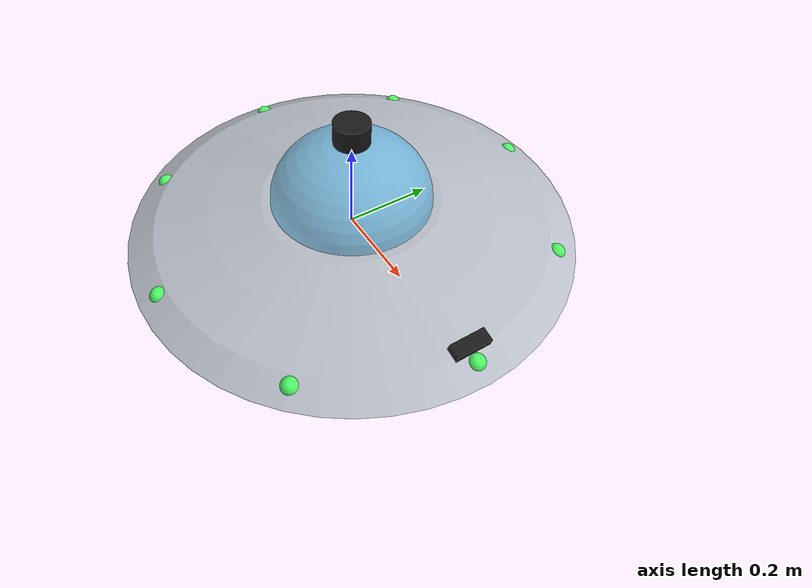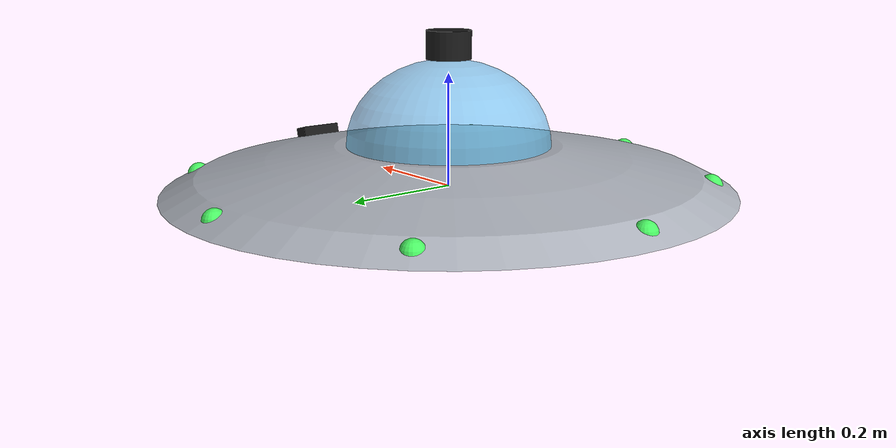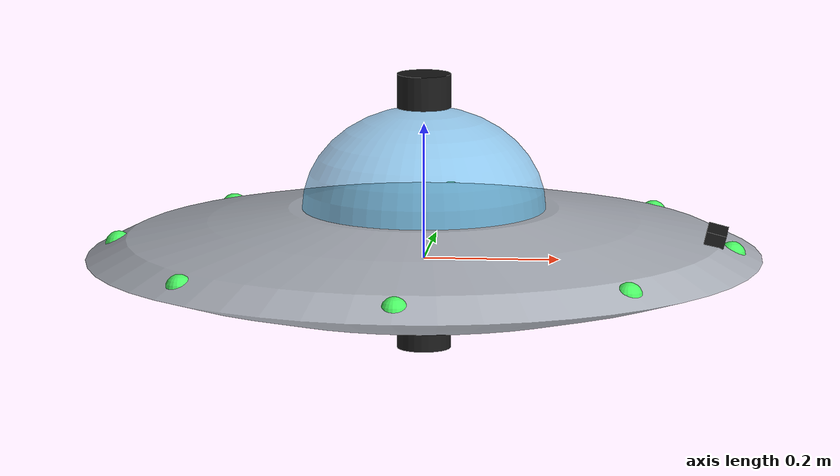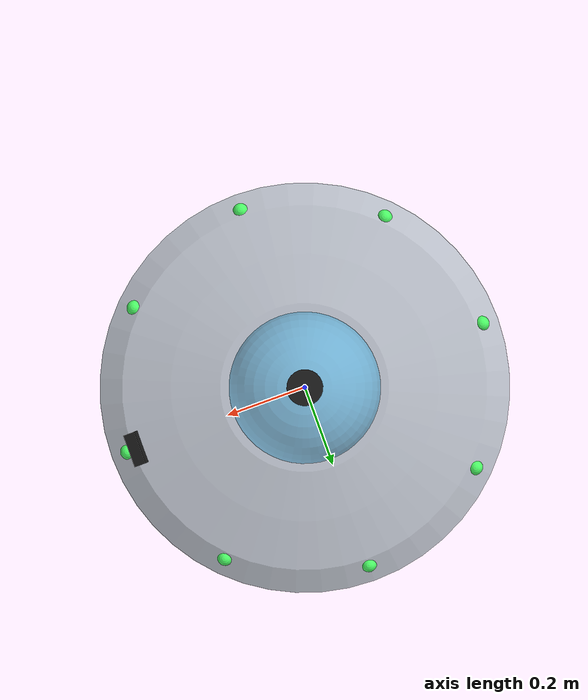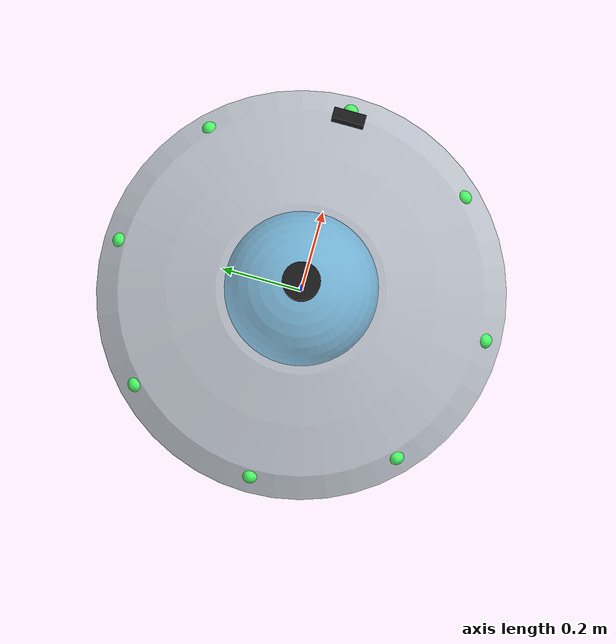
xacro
<?xml version="1.0"?>
<!--
Copyright 2026 Intelligent Robotics Lab
SPDX-License-Identifier: Apache-2.0
-->
<robot name="ufo" xmlns:xacro="http://wiki.ros.org/xacro">

  <xacro:property name="pkg" value="$(find easynav_playground_aerial_description)"/>
  <xacro:property name="mass" value="5.0"/>

  <material name="hull_silver"><color rgba="0.72 0.74 0.78 1"/></material>
  <material name="dome_glass"><color rgba="0.35 0.75 0.95 0.6"/></material>
  <material name="light_green"><color rgba="0.3 1.0 0.4 1"/></material>
  <material name="sensor_black"><color rgba="0.1 0.1 0.1 1"/></material>

  <link name="base_footprint">
    <visual>
      <geometry><mesh filename="file://${pkg}/meshes/ufo_hull.stl"/></geometry>
      <material name="hull_silver"/>
    </visual>
    <visual>
      <geometry><mesh filename="file://${pkg}/meshes/ufo_dome.stl"/></geometry>
      <material name="dome_glass"/>
    </visual>
    <collision>
      <geometry><cylinder radius="0.5" length="0.15"/></geometry>
    </collision>
    <collision>
      <origin xyz="0 0 0.12"/>
      <geometry><cylinder radius="0.18" length="0.1"/></geometry>
    </collision>
    <inertial>
      <mass value="${mass}"/>
      <!-- A disc 1 m across, 0.15 m high -->
      <inertia ixx="${mass * (3 * 0.25 + 0.0225) / 12}" ixy="0" ixz="0"
               iyy="${mass * (3 * 0.25 + 0.0225) / 12}" iyz="0" izz="${mass * 0.25 / 2}"/>
    </inertial>
  </link>
  <gazebo reference="base_footprint">
    <gravity>false</gravity>
  </gazebo>

  <!-- Rim lights -->
  <xacro:macro name="rim_light" params="n">
    <joint name="light_${n}_joint" type="fixed">
      <origin xyz="${0.455 * cos(n * pi / 4)} ${0.455 * sin(n * pi / 4)} 0.012"/>
      <parent link="base_footprint"/>
      <child link="light_${n}_link"/>
    </joint>
    <link name="light_${n}_link">
      <visual>
        <geometry><sphere radius="0.02"/></geometry>
        <material name="light_green"/>
      </visual>
    </link>
    <gazebo reference="light_${n}_link">
      <visual><material><emissive>0.3 1.0 0.4 1</emissive></material></visual>
    </gazebo>
  </xacro:macro>
  <xacro:rim_light n="0"/>
  <xacro:rim_light n="1"/>
  <xacro:rim_light n="2"/>
  <xacro:rim_light n="3"/>
  <xacro:rim_light n="4"/>
  <xacro:rim_light n="5"/>
  <xacro:rim_light n="6"/>
  <xacro:rim_light n="7"/>

  <link name="base_link"/>
  <joint name="base_link_joint" type="fixed">
    <parent link="base_footprint"/>
    <child link="base_link"/>
  </joint>

  <!-- Front camera, on the rim, looking slightly down -->
  <joint name="front_camera_joint" type="fixed">
    <origin xyz="0.43 0 0.035" rpy="0 0.25 0"/>
    <parent link="base_link"/>
    <child link="front_camera_link"/>
  </joint>
  <link name="front_camera_link">
    <visual>
      <geometry><box size="0.03 0.08 0.03"/></geometry>
      <material name="sensor_black"/>
    </visual>
  </link>
  <joint name="front_camera_optical_joint" type="fixed">
    <origin rpy="${-pi / 2} 0 ${-pi / 2}"/>
    <parent link="front_camera_link"/>
    <child link="front_camera_optical_frame"/>
  </joint>
  <link name="front_camera_optical_frame"/>
  <gazebo reference="front_camera_link">
    <sensor name="front_camera" type="camera">
      <always_on>1</always_on>
      <update_rate>15</update_rate>
      <topic>front_camera/image</topic>
      <gz_frame_id>front_camera_link</gz_frame_id>
      <camera>
        <horizontal_fov>1.4</horizontal_fov>
        <image><width>640</width><height>480</height><format>R8G8B8</format></image>
        <clip><near>0.05</near><far>200</far></clip>
        <optical_frame_id>front_camera_optical_frame</optical_frame_id>
        <camera_info_topic>front_camera/camera_info</camera_info_topic>
      </camera>
    </sensor>
  </gazebo>

  <!-- 3D lidars: 16 beams, 1 deg horizontal, 10 Hz -->
  <xacro:macro name="lidar" params="name z roll min_v max_v">
    <joint name="${name}_joint" type="fixed">
      <origin xyz="0 0 ${z}" rpy="${roll} 0 0"/>
      <parent link="base_link"/>
      <child link="${name}_link"/>
    </joint>
    <link name="${name}_link">
      <visual>
        <geometry><cylinder radius="0.04" length="0.05"/></geometry>
        <material name="sensor_black"/>
      </visual>
    </link>
    <gazebo reference="${name}_link">
      <sensor name="${name}" type="gpu_lidar">
        <always_on>1</always_on>
        <update_rate>10</update_rate>
        <topic>${name}</topic>
        <gz_frame_id>${name}_link</gz_frame_id>
        <lidar>
          <scan>
            <horizontal><samples>360</samples><min_angle>${-pi}</min_angle><max_angle>${pi}</max_angle></horizontal>
            <vertical><samples>16</samples><min_angle>${radians(min_v)}</min_angle><max_angle>${radians(max_v)}</max_angle></vertical>
          </scan>
          <range><min>0.3</min><max>60.0</max><resolution>0.01</resolution></range>
        </lidar>
      </sensor>
    </gazebo>
  </xacro:macro>
  <!-- Over the dome: from 15 deg below the horizon to 45 deg above it -->
  <xacro:lidar name="top_laser" z="0.25" roll="0" min_v="-15" max_v="45"/>
  <!-- Under the hull, upside down: from 15 deg above the horizon to 75 deg below it -->
  <xacro:lidar name="bottom_laser" z="-0.11" roll="${pi}" min_v="-15" max_v="75"/>

  <!-- IMU (absolute orientation, east-north-up) and GPS -->
  <joint name="imu_joint" type="fixed">
    <parent link="base_link"/>
    <child link="imu_link"/>
  </joint>
  <link name="imu_link"/>
  <gazebo reference="imu_link">
    <sensor name="imu" type="imu">
      <always_on>1</always_on>
      <update_rate>50</update_rate>
      <topic>imu/data</topic>
      <gz_frame_id>imu_link</gz_frame_id>
      <imu>
        <orientation_reference_frame><localization>ENU</localization></orientation_reference_frame>
      </imu>
    </sensor>
  </gazebo>
  <joint name="gps_joint" type="fixed">
    <origin xyz="-0.1 0 0.2"/>
    <parent link="base_link"/>
    <child link="gps_link"/>
  </joint>
  <link name="gps_link"/>
  <gazebo reference="gps_link">
    <sensor name="gps" type="navsat">
      <always_on>1</always_on>
      <update_rate>10</update_rate>
      <topic>gps/fix</topic>
      <gz_frame_id>gps_link</gz_frame_id>
    </sensor>
  </gazebo>

  <gazebo>
    <plugin filename="gz-sim-velocity-control-system" name="gz::sim::systems::VelocityControl">
      <topic>/model/ufo/cmd_vel</topic>
    </plugin>
    <plugin filename="gz-sim-odometry-publisher-system" name="gz::sim::systems::OdometryPublisher">
      <odom_frame>odom</odom_frame>
      <robot_base_frame>base_footprint</robot_base_frame>
      <dimensions>3</dimensions>
      <odom_publish_frequency>50</odom_publish_frequency>
      <odom_topic>/model/ufo/odometry</odom_topic>
      <tf_topic>/model/ufo/tf</tf_topic>
    </plugin>
  </gazebo>
</robot>
